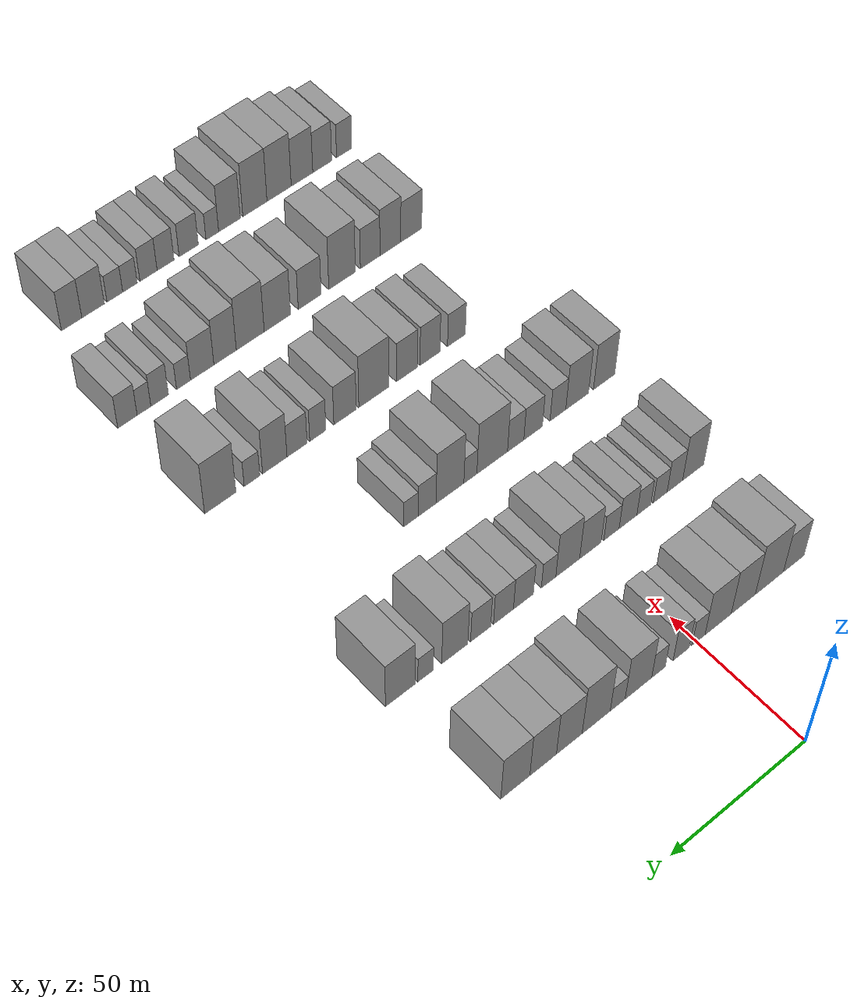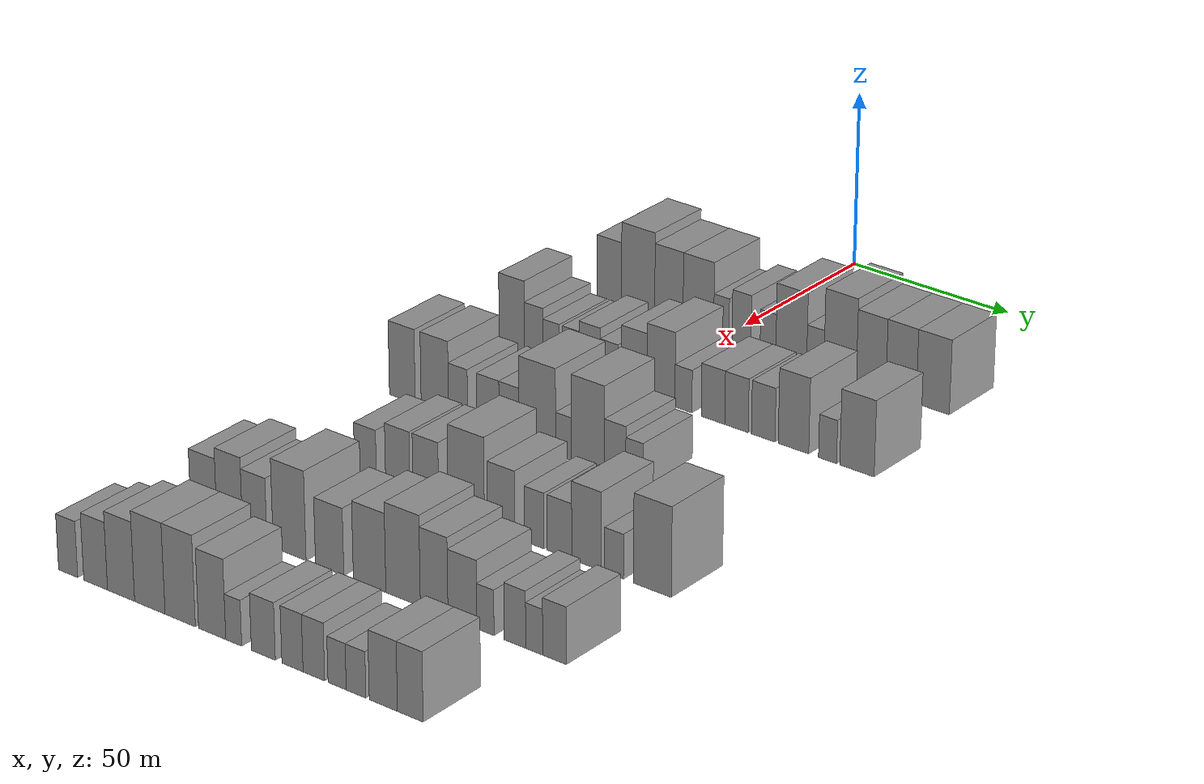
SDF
<sdf version="1.6">
 <world name="default">
  <model name="building_66">
   <static>1</static>
   <pose>50.0000 -38.0058 0 0.000000 0.000000 0.000000</pose>
   <link name="link">
    <pose>0 0 9.00 0 0 0</pose>
    <collision name="collision"><geometry><box><size>20.0000 8.2821 18.0000</size></box></geometry></collision>
    <visual name="visual">
     <cast_shadows>0</cast_shadows>
     <geometry><box><size>20.0000 8.2821 18.0000</size></box></geometry>
     <material>
      <script>
       <uri>model://grey_wall/materials/scripts</uri>
       <uri>model://grey_wall/materials/textures</uri>
       <name>vrc/grey_wall</name>
      </script>
     </material>
    </visual>
   </link>
  </model>
  <model name="building_67">
   <static>1</static>
   <pose>50.0000 -28.2612 0 0.000000 0.000000 0.000000</pose>
   <link name="link">
    <pose>0 0 12.00 0 0 0</pose>
    <collision name="collision"><geometry><box><size>20.0000 11.2072 24.0000</size></box></geometry></collision>
    <visual name="visual">
     <cast_shadows>0</cast_shadows>
     <geometry><box><size>20.0000 11.2072 24.0000</size></box></geometry>
     <material>
      <script>
       <uri>model://grey_wall/materials/scripts</uri>
       <uri>model://grey_wall/materials/textures</uri>
       <name>vrc/grey_wall</name>
      </script>
     </material>
    </visual>
   </link>
  </model>
  <model name="building_68">
   <static>1</static>
   <pose>50.0000 -17.9198 0 0.000000 0.000000 0.000000</pose>
   <link name="link">
    <pose>0 0 10.50 0 0 0</pose>
    <collision name="collision"><geometry><box><size>20.0000 9.4755 21.0000</size></box></geometry></collision>
    <visual name="visual">
     <cast_shadows>0</cast_shadows>
     <geometry><box><size>20.0000 9.4755 21.0000</size></box></geometry>
     <material>
      <script>
       <uri>model://grey_wall/materials/scripts</uri>
       <uri>model://grey_wall/materials/textures</uri>
       <name>vrc/grey_wall</name>
      </script>
     </material>
    </visual>
   </link>
  </model>
  <model name="building_69">
   <static>1</static>
   <pose>50.0000 -8.1011 0 0.000000 0.000000 0.000000</pose>
   <link name="link">
    <pose>0 0 10.50 0 0 0</pose>
    <collision name="collision"><geometry><box><size>20.0000 10.1619 21.0000</size></box></geometry></collision>
    <visual name="visual">
     <cast_shadows>0</cast_shadows>
     <geometry><box><size>20.0000 10.1619 21.0000</size></box></geometry>
     <material>
      <script>
       <uri>model://grey_wall/materials/scripts</uri>
       <uri>model://grey_wall/materials/textures</uri>
       <name>vrc/grey_wall</name>
      </script>
     </material>
    </visual>
   </link>
  </model>
  <model name="building_70">
   <static>1</static>
   <pose>50.0000 -0.4950 0 0.000000 0.000000 0.000000</pose>
   <link name="link">
    <pose>0 0 6.00 0 0 0</pose>
    <collision name="collision"><geometry><box><size>20.0000 5.0504 12.0000</size></box></geometry></collision>
    <visual name="visual">
     <cast_shadows>0</cast_shadows>
     <geometry><box><size>20.0000 5.0504 12.0000</size></box></geometry>
     <material>
      <script>
       <uri>model://grey_wall/materials/scripts</uri>
       <uri>model://grey_wall/materials/textures</uri>
       <name>vrc/grey_wall</name>
      </script>
     </material>
    </visual>
   </link>
  </model>
  <model name="building_71">
   <static>1</static>
   <pose>50.0000 6.1063 0 0.000000 0.000000 0.000000</pose>
   <link name="link">
    <pose>0 0 7.50 0 0 0</pose>
    <collision name="collision"><geometry><box><size>20.0000 6.1522 15.0000</size></box></geometry></collision>
    <visual name="visual">
     <cast_shadows>0</cast_shadows>
     <geometry><box><size>20.0000 6.1522 15.0000</size></box></geometry>
     <material>
      <script>
       <uri>model://grey_wall/materials/scripts</uri>
       <uri>model://grey_wall/materials/textures</uri>
       <name>vrc/grey_wall</name>
      </script>
     </material>
    </visual>
   </link>
  </model>
  <model name="building_72">
   <static>1</static>
   <pose>50.0000 14.7348 0 0.000000 0.000000 0.000000</pose>
   <link name="link">
    <pose>0 0 6.00 0 0 0</pose>
    <collision name="collision"><geometry><box><size>20.0000 5.1048 12.0000</size></box></geometry></collision>
    <visual name="visual">
     <cast_shadows>0</cast_shadows>
     <geometry><box><size>20.0000 5.1048 12.0000</size></box></geometry>
     <material>
      <script>
       <uri>model://grey_wall/materials/scripts</uri>
       <uri>model://grey_wall/materials/textures</uri>
       <name>vrc/grey_wall</name>
      </script>
     </material>
    </visual>
   </link>
  </model>
  <model name="building_73">
   <static>1</static>
   <pose>50.0000 22.2500 0 0.000000 0.000000 0.000000</pose>
   <link name="link">
    <pose>0 0 10.50 0 0 0</pose>
    <collision name="collision"><geometry><box><size>20.0000 9.9254 21.0000</size></box></geometry></collision>
    <visual name="visual">
     <cast_shadows>0</cast_shadows>
     <geometry><box><size>20.0000 9.9254 21.0000</size></box></geometry>
     <material>
      <script>
       <uri>model://grey_wall/materials/scripts</uri>
       <uri>model://grey_wall/materials/textures</uri>
       <name>vrc/grey_wall</name>
      </script>
     </material>
    </visual>
   </link>
  </model>
  <model name="building_74">
   <static>1</static>
   <pose>50.0000 29.9666 0 0.000000 0.000000 0.000000</pose>
   <link name="link">
    <pose>0 0 6.00 0 0 0</pose>
    <collision name="collision"><geometry><box><size>20.0000 5.5080 12.0000</size></box></geometry></collision>
    <visual name="visual">
     <cast_shadows>0</cast_shadows>
     <geometry><box><size>20.0000 5.5080 12.0000</size></box></geometry>
     <material>
      <script>
       <uri>model://grey_wall/materials/scripts</uri>
       <uri>model://grey_wall/materials/textures</uri>
       <name>vrc/grey_wall</name>
      </script>
     </material>
    </visual>
   </link>
  </model>
  <model name="building_75">
   <static>1</static>
   <pose>50.0000 37.8529 0 0.000000 0.000000 0.000000</pose>
   <link name="link">
    <pose>0 0 12.00 0 0 0</pose>
    <collision name="collision"><geometry><box><size>20.0000 10.2645 24.0000</size></box></geometry></collision>
    <visual name="visual">
     <cast_shadows>0</cast_shadows>
     <geometry><box><size>20.0000 10.2645 24.0000</size></box></geometry>
     <material>
      <script>
       <uri>model://grey_wall/materials/scripts</uri>
       <uri>model://grey_wall/materials/textures</uri>
       <name>vrc/grey_wall</name>
      </script>
     </material>
    </visual>
   </link>
  </model>
  <model name="building_76">
   <static>1</static>
   <pose>50.0000 47.6280 0 0.000000 0.000000 0.000000</pose>
   <link name="link">
    <pose>0 0 10.50 0 0 0</pose>
    <collision name="collision"><geometry><box><size>20.0000 9.2857 21.0000</size></box></geometry></collision>
    <visual name="visual">
     <cast_shadows>0</cast_shadows>
     <geometry><box><size>20.0000 9.2857 21.0000</size></box></geometry>
     <material>
      <script>
       <uri>model://grey_wall/materials/scripts</uri>
       <uri>model://grey_wall/materials/textures</uri>
       <name>vrc/grey_wall</name>
      </script>
     </material>
    </visual>
   </link>
  </model>
  <model name="building_77">
   <static>1</static>
   <pose>50.0000 57.0059 0 0.000000 0.000000 0.000000</pose>
   <link name="link">
    <pose>0 0 10.50 0 0 0</pose>
    <collision name="collision"><geometry><box><size>20.0000 9.4702 21.0000</size></box></geometry></collision>
    <visual name="visual">
     <cast_shadows>0</cast_shadows>
     <geometry><box><size>20.0000 9.4702 21.0000</size></box></geometry>
     <material>
      <script>
       <uri>model://grey_wall/materials/scripts</uri>
       <uri>model://grey_wall/materials/textures</uri>
       <name>vrc/grey_wall</name>
      </script>
     </material>
    </visual>
   </link>
  </model>
  <model name="building_78">
   <static>1</static>
   <pose>50.0000 66.8543 0 0.000000 0.000000 0.000000</pose>
   <link name="link">
    <pose>0 0 10.50 0 0 0</pose>
    <collision name="collision"><geometry><box><size>20.0000 10.2266 21.0000</size></box></geometry></collision>
    <visual name="visual">
     <cast_shadows>0</cast_shadows>
     <geometry><box><size>20.0000 10.2266 21.0000</size></box></geometry>
     <material>
      <script>
       <uri>model://grey_wall/materials/scripts</uri>
       <uri>model://grey_wall/materials/textures</uri>
       <name>vrc/grey_wall</name>
      </script>
     </material>
    </visual>
   </link>
  </model>
  <model name="building_207">
   <static>1</static>
   <pose>90.0000 -38.9517 0 0.000000 0.000000 0.000000</pose>
   <link name="link">
    <pose>0 0 10.50 0 0 0</pose>
    <collision name="collision"><geometry><box><size>20.0000 8.5309 21.0000</size></box></geometry></collision>
    <visual name="visual">
     <cast_shadows>0</cast_shadows>
     <geometry><box><size>20.0000 8.5309 21.0000</size></box></geometry>
     <material>
      <script>
       <uri>model://grey_wall/materials/scripts</uri>
       <uri>model://grey_wall/materials/textures</uri>
       <name>vrc/grey_wall</name>
      </script>
     </material>
    </visual>
   </link>
  </model>
  <model name="building_208">
   <static>1</static>
   <pose>90.0000 -31.5773 0 0.000000 0.000000 0.000000</pose>
   <link name="link">
    <pose>0 0 7.50 0 0 0</pose>
    <collision name="collision"><geometry><box><size>20.0000 6.2178 15.0000</size></box></geometry></collision>
    <visual name="visual">
     <cast_shadows>0</cast_shadows>
     <geometry><box><size>20.0000 6.2178 15.0000</size></box></geometry>
     <material>
      <script>
       <uri>model://grey_wall/materials/scripts</uri>
       <uri>model://grey_wall/materials/textures</uri>
       <name>vrc/grey_wall</name>
      </script>
     </material>
    </visual>
   </link>
  </model>
  <model name="building_209">
   <static>1</static>
   <pose>90.0000 -25.7071 0 0.000000 0.000000 0.000000</pose>
   <link name="link">
    <pose>0 0 6.00 0 0 0</pose>
    <collision name="collision"><geometry><box><size>20.0000 5.5227 12.0000</size></box></geometry></collision>
    <visual name="visual">
     <cast_shadows>0</cast_shadows>
     <geometry><box><size>20.0000 5.5227 12.0000</size></box></geometry>
     <material>
      <script>
       <uri>model://grey_wall/materials/scripts</uri>
       <uri>model://grey_wall/materials/textures</uri>
       <name>vrc/grey_wall</name>
      </script>
     </material>
    </visual>
   </link>
  </model>
  <model name="building_210">
   <static>1</static>
   <pose>90.0000 -19.2058 0 0.000000 0.000000 0.000000</pose>
   <link name="link">
    <pose>0 0 6.00 0 0 0</pose>
    <collision name="collision"><geometry><box><size>20.0000 5.4799 12.0000</size></box></geometry></collision>
    <visual name="visual">
     <cast_shadows>0</cast_shadows>
     <geometry><box><size>20.0000 5.4799 12.0000</size></box></geometry>
     <material>
      <script>
       <uri>model://grey_wall/materials/scripts</uri>
       <uri>model://grey_wall/materials/textures</uri>
       <name>vrc/grey_wall</name>
      </script>
     </material>
    </visual>
   </link>
  </model>
  <model name="building_211">
   <static>1</static>
   <pose>90.0000 -12.9869 0 0.000000 0.000000 0.000000</pose>
   <link name="link">
    <pose>0 0 7.50 0 0 0</pose>
    <collision name="collision"><geometry><box><size>20.0000 6.9579 15.0000</size></box></geometry></collision>
    <visual name="visual">
     <cast_shadows>0</cast_shadows>
     <geometry><box><size>20.0000 6.9579 15.0000</size></box></geometry>
     <material>
      <script>
       <uri>model://grey_wall/materials/scripts</uri>
       <uri>model://grey_wall/materials/textures</uri>
       <name>vrc/grey_wall</name>
      </script>
     </material>
    </visual>
   </link>
  </model>
  <model name="building_212">
   <static>1</static>
   <pose>90.0000 -6.5083 0 0.000000 0.000000 0.000000</pose>
   <link name="link">
    <pose>0 0 6.00 0 0 0</pose>
    <collision name="collision"><geometry><box><size>20.0000 5.9993 12.0000</size></box></geometry></collision>
    <visual name="visual">
     <cast_shadows>0</cast_shadows>
     <geometry><box><size>20.0000 5.9993 12.0000</size></box></geometry>
     <material>
      <script>
       <uri>model://grey_wall/materials/scripts</uri>
       <uri>model://grey_wall/materials/textures</uri>
       <name>vrc/grey_wall</name>
      </script>
     </material>
    </visual>
   </link>
  </model>
  <model name="building_213">
   <static>1</static>
   <pose>90.0000 1.6147 0 0.000000 0.000000 0.000000</pose>
   <link name="link">
    <pose>0 0 9.00 0 0 0</pose>
    <collision name="collision"><geometry><box><size>20.0000 8.2468 18.0000</size></box></geometry></collision>
    <visual name="visual">
     <cast_shadows>0</cast_shadows>
     <geometry><box><size>20.0000 8.2468 18.0000</size></box></geometry>
     <material>
      <script>
       <uri>model://grey_wall/materials/scripts</uri>
       <uri>model://grey_wall/materials/textures</uri>
       <name>vrc/grey_wall</name>
      </script>
     </material>
    </visual>
   </link>
  </model>
  <model name="building_214">
   <static>1</static>
   <pose>90.0000 10.2781 0 0.000000 0.000000 0.000000</pose>
   <link name="link">
    <pose>0 0 10.50 0 0 0</pose>
    <collision name="collision"><geometry><box><size>20.0000 9.0800 21.0000</size></box></geometry></collision>
    <visual name="visual">
     <cast_shadows>0</cast_shadows>
     <geometry><box><size>20.0000 9.0800 21.0000</size></box></geometry>
     <material>
      <script>
       <uri>model://grey_wall/materials/scripts</uri>
       <uri>model://grey_wall/materials/textures</uri>
       <name>vrc/grey_wall</name>
      </script>
     </material>
    </visual>
   </link>
  </model>
  <model name="building_215">
   <static>1</static>
   <pose>90.0000 17.5493 0 0.000000 0.000000 0.000000</pose>
   <link name="link">
    <pose>0 0 6.00 0 0 0</pose>
    <collision name="collision"><geometry><box><size>20.0000 5.4625 12.0000</size></box></geometry></collision>
    <visual name="visual">
     <cast_shadows>0</cast_shadows>
     <geometry><box><size>20.0000 5.4625 12.0000</size></box></geometry>
     <material>
      <script>
       <uri>model://grey_wall/materials/scripts</uri>
       <uri>model://grey_wall/materials/textures</uri>
       <name>vrc/grey_wall</name>
      </script>
     </material>
    </visual>
   </link>
  </model>
  <model name="building_216">
   <static>1</static>
   <pose>90.0000 26.9923 0 0.000000 0.000000 0.000000</pose>
   <link name="link">
    <pose>0 0 7.50 0 0 0</pose>
    <collision name="collision"><geometry><box><size>20.0000 7.4236 15.0000</size></box></geometry></collision>
    <visual name="visual">
     <cast_shadows>0</cast_shadows>
     <geometry><box><size>20.0000 7.4236 15.0000</size></box></geometry>
     <material>
      <script>
       <uri>model://grey_wall/materials/scripts</uri>
       <uri>model://grey_wall/materials/textures</uri>
       <name>vrc/grey_wall</name>
      </script>
     </material>
    </visual>
   </link>
  </model>
  <model name="building_217">
   <static>1</static>
   <pose>90.0000 34.4051 0 0.000000 0.000000 0.000000</pose>
   <link name="link">
    <pose>0 0 7.50 0 0 0</pose>
    <collision name="collision"><geometry><box><size>20.0000 7.4021 15.0000</size></box></geometry></collision>
    <visual name="visual">
     <cast_shadows>0</cast_shadows>
     <geometry><box><size>20.0000 7.4021 15.0000</size></box></geometry>
     <material>
      <script>
       <uri>model://grey_wall/materials/scripts</uri>
       <uri>model://grey_wall/materials/textures</uri>
       <name>vrc/grey_wall</name>
      </script>
     </material>
    </visual>
   </link>
  </model>
  <model name="building_218">
   <static>1</static>
   <pose>90.0000 42.7882 0 0.000000 0.000000 0.000000</pose>
   <link name="link">
    <pose>0 0 7.50 0 0 0</pose>
    <collision name="collision"><geometry><box><size>20.0000 7.3640 15.0000</size></box></geometry></collision>
    <visual name="visual">
     <cast_shadows>0</cast_shadows>
     <geometry><box><size>20.0000 7.3640 15.0000</size></box></geometry>
     <material>
      <script>
       <uri>model://grey_wall/materials/scripts</uri>
       <uri>model://grey_wall/materials/textures</uri>
       <name>vrc/grey_wall</name>
      </script>
     </material>
    </visual>
   </link>
  </model>
  <model name="building_219">
   <static>1</static>
   <pose>90.0000 52.2006 0 0.000000 0.000000 0.000000</pose>
   <link name="link">
    <pose>0 0 10.50 0 0 0</pose>
    <collision name="collision"><geometry><box><size>20.0000 9.4609 21.0000</size></box></geometry></collision>
    <visual name="visual">
     <cast_shadows>0</cast_shadows>
     <geometry><box><size>20.0000 9.4609 21.0000</size></box></geometry>
     <material>
      <script>
       <uri>model://grey_wall/materials/scripts</uri>
       <uri>model://grey_wall/materials/textures</uri>
       <name>vrc/grey_wall</name>
      </script>
     </material>
    </visual>
   </link>
  </model>
  <model name="building_220">
   <static>1</static>
   <pose>90.0000 62.6886 0 0.000000 0.000000 0.000000</pose>
   <link name="link">
    <pose>0 0 6.00 0 0 0</pose>
    <collision name="collision"><geometry><box><size>20.0000 5.5152 12.0000</size></box></geometry></collision>
    <visual name="visual">
     <cast_shadows>0</cast_shadows>
     <geometry><box><size>20.0000 5.5152 12.0000</size></box></geometry>
     <material>
      <script>
       <uri>model://grey_wall/materials/scripts</uri>
       <uri>model://grey_wall/materials/textures</uri>
       <name>vrc/grey_wall</name>
      </script>
     </material>
    </visual>
   </link>
  </model>
  <model name="building_221">
   <static>1</static>
   <pose>90.0000 71.6582 0 0.000000 0.000000 0.000000</pose>
   <link name="link">
    <pose>0 0 10.50 0 0 0</pose>
    <collision name="collision"><geometry><box><size>20.0000 10.4239 21.0000</size></box></geometry></collision>
    <visual name="visual">
     <cast_shadows>0</cast_shadows>
     <geometry><box><size>20.0000 10.4239 21.0000</size></box></geometry>
     <material>
      <script>
       <uri>model://grey_wall/materials/scripts</uri>
       <uri>model://grey_wall/materials/textures</uri>
       <name>vrc/grey_wall</name>
      </script>
     </material>
    </visual>
   </link>
  </model>
  <model name="building_348">
   <static>1</static>
   <pose>130.0000 -42.2917 0 0.000000 0.000000 0.000000</pose>
   <link name="link">
    <pose>0 0 10.50 0 0 0</pose>
    <collision name="collision"><geometry><box><size>20.0000 8.6588 21.0000</size></box></geometry></collision>
    <visual name="visual">
     <cast_shadows>0</cast_shadows>
     <geometry><box><size>20.0000 8.6588 21.0000</size></box></geometry>
     <material>
      <script>
       <uri>model://grey_wall/materials/scripts</uri>
       <uri>model://grey_wall/materials/textures</uri>
       <name>vrc/grey_wall</name>
      </script>
     </material>
    </visual>
   </link>
  </model>
  <model name="building_349">
   <static>1</static>
   <pose>130.0000 -31.3936 0 0.000000 0.000000 0.000000</pose>
   <link name="link">
    <pose>0 0 10.50 0 0 0</pose>
    <collision name="collision"><geometry><box><size>20.0000 9.1375 21.0000</size></box></geometry></collision>
    <visual name="visual">
     <cast_shadows>0</cast_shadows>
     <geometry><box><size>20.0000 9.1375 21.0000</size></box></geometry>
     <material>
      <script>
       <uri>model://grey_wall/materials/scripts</uri>
       <uri>model://grey_wall/materials/textures</uri>
       <name>vrc/grey_wall</name>
      </script>
     </material>
    </visual>
   </link>
  </model>
  <model name="building_350">
   <static>1</static>
   <pose>130.0000 -23.6663 0 0.000000 0.000000 0.000000</pose>
   <link name="link">
    <pose>0 0 7.50 0 0 0</pose>
    <collision name="collision"><geometry><box><size>20.0000 6.3170 15.0000</size></box></geometry></collision>
    <visual name="visual">
     <cast_shadows>0</cast_shadows>
     <geometry><box><size>20.0000 6.3170 15.0000</size></box></geometry>
     <material>
      <script>
       <uri>model://grey_wall/materials/scripts</uri>
       <uri>model://grey_wall/materials/textures</uri>
       <name>vrc/grey_wall</name>
      </script>
     </material>
    </visual>
   </link>
  </model>
  <model name="building_351">
   <static>1</static>
   <pose>130.0000 -13.8489 0 0.000000 0.000000 0.000000</pose>
   <link name="link">
    <pose>0 0 7.50 0 0 0</pose>
    <collision name="collision"><geometry><box><size>20.0000 7.3179 15.0000</size></box></geometry></collision>
    <visual name="visual">
     <cast_shadows>0</cast_shadows>
     <geometry><box><size>20.0000 7.3179 15.0000</size></box></geometry>
     <material>
      <script>
       <uri>model://grey_wall/materials/scripts</uri>
       <uri>model://grey_wall/materials/textures</uri>
       <name>vrc/grey_wall</name>
      </script>
     </material>
    </visual>
   </link>
  </model>
  <model name="building_352">
   <static>1</static>
   <pose>130.0000 -6.9910 0 0.000000 0.000000 0.000000</pose>
   <link name="link">
    <pose>0 0 7.50 0 0 0</pose>
    <collision name="collision"><geometry><box><size>20.0000 6.3978 15.0000</size></box></geometry></collision>
    <visual name="visual">
     <cast_shadows>0</cast_shadows>
     <geometry><box><size>20.0000 6.3978 15.0000</size></box></geometry>
     <material>
      <script>
       <uri>model://grey_wall/materials/scripts</uri>
       <uri>model://grey_wall/materials/textures</uri>
       <name>vrc/grey_wall</name>
      </script>
     </material>
    </visual>
   </link>
  </model>
  <model name="building_353">
   <static>1</static>
   <pose>130.0000 2.1304 0 0.000000 0.000000 0.000000</pose>
   <link name="link">
    <pose>0 0 12.00 0 0 0</pose>
    <collision name="collision"><geometry><box><size>20.0000 11.8450 24.0000</size></box></geometry></collision>
    <visual name="visual">
     <cast_shadows>0</cast_shadows>
     <geometry><box><size>20.0000 11.8450 24.0000</size></box></geometry>
     <material>
      <script>
       <uri>model://grey_wall/materials/scripts</uri>
       <uri>model://grey_wall/materials/textures</uri>
       <name>vrc/grey_wall</name>
      </script>
     </material>
    </visual>
   </link>
  </model>
  <model name="building_354">
   <static>1</static>
   <pose>130.0000 10.5451 0 0.000000 0.000000 0.000000</pose>
   <link name="link">
    <pose>0 0 6.00 0 0 0</pose>
    <collision name="collision"><geometry><box><size>20.0000 4.9845 12.0000</size></box></geometry></collision>
    <visual name="visual">
     <cast_shadows>0</cast_shadows>
     <geometry><box><size>20.0000 4.9845 12.0000</size></box></geometry>
     <material>
      <script>
       <uri>model://grey_wall/materials/scripts</uri>
       <uri>model://grey_wall/materials/textures</uri>
       <name>vrc/grey_wall</name>
      </script>
     </material>
    </visual>
   </link>
  </model>
  <model name="building_355">
   <static>1</static>
   <pose>130.0000 18.3185 0 0.000000 0.000000 0.000000</pose>
   <link name="link">
    <pose>0 0 12.00 0 0 0</pose>
    <collision name="collision"><geometry><box><size>20.0000 10.5623 24.0000</size></box></geometry></collision>
    <visual name="visual">
     <cast_shadows>0</cast_shadows>
     <geometry><box><size>20.0000 10.5623 24.0000</size></box></geometry>
     <material>
      <script>
       <uri>model://grey_wall/materials/scripts</uri>
       <uri>model://grey_wall/materials/textures</uri>
       <name>vrc/grey_wall</name>
      </script>
     </material>
    </visual>
   </link>
  </model>
  <model name="building_356">
   <static>1</static>
   <pose>130.0000 26.9255 0 0.000000 0.000000 0.000000</pose>
   <link name="link">
    <pose>0 0 7.50 0 0 0</pose>
    <collision name="collision"><geometry><box><size>20.0000 6.6515 15.0000</size></box></geometry></collision>
    <visual name="visual">
     <cast_shadows>0</cast_shadows>
     <geometry><box><size>20.0000 6.6515 15.0000</size></box></geometry>
     <material>
      <script>
       <uri>model://grey_wall/materials/scripts</uri>
       <uri>model://grey_wall/materials/textures</uri>
       <name>vrc/grey_wall</name>
      </script>
     </material>
    </visual>
   </link>
  </model>
  <model name="building_357">
   <static>1</static>
   <pose>130.0000 32.9451 0 0.000000 0.000000 0.000000</pose>
   <link name="link">
    <pose>0 0 6.00 0 0 0</pose>
    <collision name="collision"><geometry><box><size>20.0000 5.3878 12.0000</size></box></geometry></collision>
    <visual name="visual">
     <cast_shadows>0</cast_shadows>
     <geometry><box><size>20.0000 5.3878 12.0000</size></box></geometry>
     <material>
      <script>
       <uri>model://grey_wall/materials/scripts</uri>
       <uri>model://grey_wall/materials/textures</uri>
       <name>vrc/grey_wall</name>
      </script>
     </material>
    </visual>
   </link>
  </model>
  <model name="building_482">
   <static>1</static>
   <pose>170.0000 -19.8377 0 0.000000 0.000000 0.000000</pose>
   <link name="link">
    <pose>0 0 7.50 0 0 0</pose>
    <collision name="collision"><geometry><box><size>20.0000 7.1137 15.0000</size></box></geometry></collision>
    <visual name="visual">
     <cast_shadows>0</cast_shadows>
     <geometry><box><size>20.0000 7.1137 15.0000</size></box></geometry>
     <material>
      <script>
       <uri>model://grey_wall/materials/scripts</uri>
       <uri>model://grey_wall/materials/textures</uri>
       <name>vrc/grey_wall</name>
      </script>
     </material>
    </visual>
   </link>
  </model>
  <model name="building_483">
   <static>1</static>
   <pose>170.0000 -9.3488 0 0.000000 0.000000 0.000000</pose>
   <link name="link">
    <pose>0 0 9.00 0 0 0</pose>
    <collision name="collision"><geometry><box><size>20.0000 7.8642 18.0000</size></box></geometry></collision>
    <visual name="visual">
     <cast_shadows>0</cast_shadows>
     <geometry><box><size>20.0000 7.8642 18.0000</size></box></geometry>
     <material>
      <script>
       <uri>model://grey_wall/materials/scripts</uri>
       <uri>model://grey_wall/materials/textures</uri>
       <name>vrc/grey_wall</name>
      </script>
     </material>
    </visual>
   </link>
  </model>
  <model name="building_484">
   <static>1</static>
   <pose>170.0000 -0.3206 0 0.000000 0.000000 0.000000</pose>
   <link name="link">
    <pose>0 0 9.00 0 0 0</pose>
    <collision name="collision"><geometry><box><size>20.0000 8.1921 18.0000</size></box></geometry></collision>
    <visual name="visual">
     <cast_shadows>0</cast_shadows>
     <geometry><box><size>20.0000 8.1921 18.0000</size></box></geometry>
     <material>
      <script>
       <uri>model://grey_wall/materials/scripts</uri>
       <uri>model://grey_wall/materials/textures</uri>
       <name>vrc/grey_wall</name>
      </script>
     </material>
    </visual>
   </link>
  </model>
  <model name="building_485">
   <static>1</static>
   <pose>170.0000 12.5129 0 0.000000 0.000000 0.000000</pose>
   <link name="link">
    <pose>0 0 12.00 0 0 0</pose>
    <collision name="collision"><geometry><box><size>20.0000 11.4749 24.0000</size></box></geometry></collision>
    <visual name="visual">
     <cast_shadows>0</cast_shadows>
     <geometry><box><size>20.0000 11.4749 24.0000</size></box></geometry>
     <material>
      <script>
       <uri>model://grey_wall/materials/scripts</uri>
       <uri>model://grey_wall/materials/textures</uri>
       <name>vrc/grey_wall</name>
      </script>
     </material>
    </visual>
   </link>
  </model>
  <model name="building_486">
   <static>1</static>
   <pose>170.0000 23.4883 0 0.000000 0.000000 0.000000</pose>
   <link name="link">
    <pose>0 0 9.00 0 0 0</pose>
    <collision name="collision"><geometry><box><size>20.0000 8.4759 18.0000</size></box></geometry></collision>
    <visual name="visual">
     <cast_shadows>0</cast_shadows>
     <geometry><box><size>20.0000 8.4759 18.0000</size></box></geometry>
     <material>
      <script>
       <uri>model://grey_wall/materials/scripts</uri>
       <uri>model://grey_wall/materials/textures</uri>
       <name>vrc/grey_wall</name>
      </script>
     </material>
    </visual>
   </link>
  </model>
  <model name="building_487">
   <static>1</static>
   <pose>170.0000 33.7559 0 0.000000 0.000000 0.000000</pose>
   <link name="link">
    <pose>0 0 7.50 0 0 0</pose>
    <collision name="collision"><geometry><box><size>20.0000 6.0593 15.0000</size></box></geometry></collision>
    <visual name="visual">
     <cast_shadows>0</cast_shadows>
     <geometry><box><size>20.0000 6.0593 15.0000</size></box></geometry>
     <material>
      <script>
       <uri>model://grey_wall/materials/scripts</uri>
       <uri>model://grey_wall/materials/textures</uri>
       <name>vrc/grey_wall</name>
      </script>
     </material>
    </visual>
   </link>
  </model>
  <model name="building_488">
   <static>1</static>
   <pose>170.0000 41.5181 0 0.000000 0.000000 0.000000</pose>
   <link name="link">
    <pose>0 0 7.50 0 0 0</pose>
    <collision name="collision"><geometry><box><size>20.0000 7.4650 15.0000</size></box></geometry></collision>
    <visual name="visual">
     <cast_shadows>0</cast_shadows>
     <geometry><box><size>20.0000 7.4650 15.0000</size></box></geometry>
     <material>
      <script>
       <uri>model://grey_wall/materials/scripts</uri>
       <uri>model://grey_wall/materials/textures</uri>
       <name>vrc/grey_wall</name>
      </script>
     </material>
    </visual>
   </link>
  </model>
  <model name="building_489">
   <static>1</static>
   <pose>170.0000 49.7402 0 0.000000 0.000000 0.000000</pose>
   <link name="link">
    <pose>0 0 10.50 0 0 0</pose>
    <collision name="collision"><geometry><box><size>20.0000 8.9791 21.0000</size></box></geometry></collision>
    <visual name="visual">
     <cast_shadows>0</cast_shadows>
     <geometry><box><size>20.0000 8.9791 21.0000</size></box></geometry>
     <material>
      <script>
       <uri>model://grey_wall/materials/scripts</uri>
       <uri>model://grey_wall/materials/textures</uri>
       <name>vrc/grey_wall</name>
      </script>
     </material>
    </visual>
   </link>
  </model>
  <model name="building_490">
   <static>1</static>
   <pose>170.0000 58.0812 0 0.000000 0.000000 0.000000</pose>
   <link name="link">
    <pose>0 0 6.00 0 0 0</pose>
    <collision name="collision"><geometry><box><size>20.0000 5.7029 12.0000</size></box></geometry></collision>
    <visual name="visual">
     <cast_shadows>0</cast_shadows>
     <geometry><box><size>20.0000 5.7029 12.0000</size></box></geometry>
     <material>
      <script>
       <uri>model://grey_wall/materials/scripts</uri>
       <uri>model://grey_wall/materials/textures</uri>
       <name>vrc/grey_wall</name>
      </script>
     </material>
    </visual>
   </link>
  </model>
  <model name="building_491">
   <static>1</static>
   <pose>170.0000 69.5574 0 0.000000 0.000000 0.000000</pose>
   <link name="link">
    <pose>0 0 12.00 0 0 0</pose>
    <collision name="collision"><geometry><box><size>20.0000 11.2495 24.0000</size></box></geometry></collision>
    <visual name="visual">
     <cast_shadows>0</cast_shadows>
     <geometry><box><size>20.0000 11.2495 24.0000</size></box></geometry>
     <material>
      <script>
       <uri>model://grey_wall/materials/scripts</uri>
       <uri>model://grey_wall/materials/textures</uri>
       <name>vrc/grey_wall</name>
      </script>
     </material>
    </visual>
   </link>
  </model>
  <model name="building_617">
   <static>1</static>
   <pose>210.0000 -36.8878 0 0.000000 0.000000 0.000000</pose>
   <link name="link">
    <pose>0 0 9.00 0 0 0</pose>
    <collision name="collision"><geometry><box><size>20.0000 8.5770 18.0000</size></box></geometry></collision>
    <visual name="visual">
     <cast_shadows>0</cast_shadows>
     <geometry><box><size>20.0000 8.5770 18.0000</size></box></geometry>
     <material>
      <script>
       <uri>model://grey_wall/materials/scripts</uri>
       <uri>model://grey_wall/materials/textures</uri>
       <name>vrc/grey_wall</name>
      </script>
     </material>
    </visual>
   </link>
  </model>
  <model name="building_618">
   <static>1</static>
   <pose>210.0000 -28.3944 0 0.000000 0.000000 0.000000</pose>
   <link name="link">
    <pose>0 0 10.50 0 0 0</pose>
    <collision name="collision"><geometry><box><size>20.0000 8.4099 21.0000</size></box></geometry></collision>
    <visual name="visual">
     <cast_shadows>0</cast_shadows>
     <geometry><box><size>20.0000 8.4099 21.0000</size></box></geometry>
     <material>
      <script>
       <uri>model://grey_wall/materials/scripts</uri>
       <uri>model://grey_wall/materials/textures</uri>
       <name>vrc/grey_wall</name>
      </script>
     </material>
    </visual>
   </link>
  </model>
  <model name="building_619">
   <static>1</static>
   <pose>210.0000 -20.2342 0 0.000000 0.000000 0.000000</pose>
   <link name="link">
    <pose>0 0 9.00 0 0 0</pose>
    <collision name="collision"><geometry><box><size>20.0000 7.9104 18.0000</size></box></geometry></collision>
    <visual name="visual">
     <cast_shadows>0</cast_shadows>
     <geometry><box><size>20.0000 7.9104 18.0000</size></box></geometry>
     <material>
      <script>
       <uri>model://grey_wall/materials/scripts</uri>
       <uri>model://grey_wall/materials/textures</uri>
       <name>vrc/grey_wall</name>
      </script>
     </material>
    </visual>
   </link>
  </model>
  <model name="building_620">
   <static>1</static>
   <pose>210.0000 -9.0103 0 0.000000 0.000000 0.000000</pose>
   <link name="link">
    <pose>0 0 12.00 0 0 0</pose>
    <collision name="collision"><geometry><box><size>20.0000 10.5374 24.0000</size></box></geometry></collision>
    <visual name="visual">
     <cast_shadows>0</cast_shadows>
     <geometry><box><size>20.0000 10.5374 24.0000</size></box></geometry>
     <material>
      <script>
       <uri>model://grey_wall/materials/scripts</uri>
       <uri>model://grey_wall/materials/textures</uri>
       <name>vrc/grey_wall</name>
      </script>
     </material>
    </visual>
   </link>
  </model>
  <model name="building_621">
   <static>1</static>
   <pose>210.0000 3.7434 0 0.000000 0.000000 0.000000</pose>
   <link name="link">
    <pose>0 0 9.00 0 0 0</pose>
    <collision name="collision"><geometry><box><size>20.0000 8.9698 18.0000</size></box></geometry></collision>
    <visual name="visual">
     <cast_shadows>0</cast_shadows>
     <geometry><box><size>20.0000 8.9698 18.0000</size></box></geometry>
     <material>
      <script>
       <uri>model://grey_wall/materials/scripts</uri>
       <uri>model://grey_wall/materials/textures</uri>
       <name>vrc/grey_wall</name>
      </script>
     </material>
    </visual>
   </link>
  </model>
  <model name="building_622">
   <static>1</static>
   <pose>210.0000 16.3036 0 0.000000 0.000000 0.000000</pose>
   <link name="link">
    <pose>0 0 10.50 0 0 0</pose>
    <collision name="collision"><geometry><box><size>20.0000 10.1507 21.0000</size></box></geometry></collision>
    <visual name="visual">
     <cast_shadows>0</cast_shadows>
     <geometry><box><size>20.0000 10.1507 21.0000</size></box></geometry>
     <material>
      <script>
       <uri>model://grey_wall/materials/scripts</uri>
       <uri>model://grey_wall/materials/textures</uri>
       <name>vrc/grey_wall</name>
      </script>
     </material>
    </visual>
   </link>
  </model>
  <model name="building_623">
   <static>1</static>
   <pose>210.0000 26.7003 0 0.000000 0.000000 0.000000</pose>
   <link name="link">
    <pose>0 0 12.00 0 0 0</pose>
    <collision name="collision"><geometry><box><size>20.0000 10.6427 24.0000</size></box></geometry></collision>
    <visual name="visual">
     <cast_shadows>0</cast_shadows>
     <geometry><box><size>20.0000 10.6427 24.0000</size></box></geometry>
     <material>
      <script>
       <uri>model://grey_wall/materials/scripts</uri>
       <uri>model://grey_wall/materials/textures</uri>
       <name>vrc/grey_wall</name>
      </script>
     </material>
    </visual>
   </link>
  </model>
  <model name="building_624">
   <static>1</static>
   <pose>210.0000 36.2423 0 0.000000 0.000000 0.000000</pose>
   <link name="link">
    <pose>0 0 10.50 0 0 0</pose>
    <collision name="collision"><geometry><box><size>20.0000 8.4412 21.0000</size></box></geometry></collision>
    <visual name="visual">
     <cast_shadows>0</cast_shadows>
     <geometry><box><size>20.0000 8.4412 21.0000</size></box></geometry>
     <material>
      <script>
       <uri>model://grey_wall/materials/scripts</uri>
       <uri>model://grey_wall/materials/textures</uri>
       <name>vrc/grey_wall</name>
      </script>
     </material>
    </visual>
   </link>
  </model>
  <model name="building_625">
   <static>1</static>
   <pose>210.0000 44.8315 0 0.000000 0.000000 0.000000</pose>
   <link name="link">
    <pose>0 0 9.00 0 0 0</pose>
    <collision name="collision"><geometry><box><size>20.0000 8.7373 18.0000</size></box></geometry></collision>
    <visual name="visual">
     <cast_shadows>0</cast_shadows>
     <geometry><box><size>20.0000 8.7373 18.0000</size></box></geometry>
     <material>
      <script>
       <uri>model://grey_wall/materials/scripts</uri>
       <uri>model://grey_wall/materials/textures</uri>
       <name>vrc/grey_wall</name>
      </script>
     </material>
    </visual>
   </link>
  </model>
  <model name="building_626">
   <static>1</static>
   <pose>210.0000 51.7820 0 0.000000 0.000000 0.000000</pose>
   <link name="link">
    <pose>0 0 6.00 0 0 0</pose>
    <collision name="collision"><geometry><box><size>20.0000 5.1637 12.0000</size></box></geometry></collision>
    <visual name="visual">
     <cast_shadows>0</cast_shadows>
     <geometry><box><size>20.0000 5.1637 12.0000</size></box></geometry>
     <material>
      <script>
       <uri>model://grey_wall/materials/scripts</uri>
       <uri>model://grey_wall/materials/textures</uri>
       <name>vrc/grey_wall</name>
      </script>
     </material>
    </visual>
   </link>
  </model>
  <model name="building_627">
   <static>1</static>
   <pose>210.0000 60.5786 0 0.000000 0.000000 0.000000</pose>
   <link name="link">
    <pose>0 0 7.50 0 0 0</pose>
    <collision name="collision"><geometry><box><size>20.0000 6.4294 15.0000</size></box></geometry></collision>
    <visual name="visual">
     <cast_shadows>0</cast_shadows>
     <geometry><box><size>20.0000 6.4294 15.0000</size></box></geometry>
     <material>
      <script>
       <uri>model://grey_wall/materials/scripts</uri>
       <uri>model://grey_wall/materials/textures</uri>
       <name>vrc/grey_wall</name>
      </script>
     </material>
    </visual>
   </link>
  </model>
  <model name="building_628">
   <static>1</static>
   <pose>210.0000 66.2946 0 0.000000 0.000000 0.000000</pose>
   <link name="link">
    <pose>0 0 6.00 0 0 0</pose>
    <collision name="collision"><geometry><box><size>20.0000 5.0028 12.0000</size></box></geometry></collision>
    <visual name="visual">
     <cast_shadows>0</cast_shadows>
     <geometry><box><size>20.0000 5.0028 12.0000</size></box></geometry>
     <material>
      <script>
       <uri>model://grey_wall/materials/scripts</uri>
       <uri>model://grey_wall/materials/textures</uri>
       <name>vrc/grey_wall</name>
      </script>
     </material>
    </visual>
   </link>
  </model>
  <model name="building_629">
   <static>1</static>
   <pose>210.0000 72.2993 0 0.000000 0.000000 0.000000</pose>
   <link name="link">
    <pose>0 0 7.50 0 0 0</pose>
    <collision name="collision"><geometry><box><size>20.0000 7.0065 15.0000</size></box></geometry></collision>
    <visual name="visual">
     <cast_shadows>0</cast_shadows>
     <geometry><box><size>20.0000 7.0065 15.0000</size></box></geometry>
     <material>
      <script>
       <uri>model://grey_wall/materials/scripts</uri>
       <uri>model://grey_wall/materials/textures</uri>
       <name>vrc/grey_wall</name>
      </script>
     </material>
    </visual>
   </link>
  </model>
  <model name="building_744">
   <static>1</static>
   <pose>250.0000 -43.4494 0 0.000000 0.000000 0.000000</pose>
   <link name="link">
    <pose>0 0 7.50 0 0 0</pose>
    <collision name="collision"><geometry><box><size>20.0000 6.2987 15.0000</size></box></geometry></collision>
    <visual name="visual">
     <cast_shadows>0</cast_shadows>
     <geometry><box><size>20.0000 6.2987 15.0000</size></box></geometry>
     <material>
      <script>
       <uri>model://grey_wall/materials/scripts</uri>
       <uri>model://grey_wall/materials/textures</uri>
       <name>vrc/grey_wall</name>
      </script>
     </material>
    </visual>
   </link>
  </model>
  <model name="building_745">
   <static>1</static>
   <pose>250.0000 -34.4172 0 0.000000 0.000000 0.000000</pose>
   <link name="link">
    <pose>0 0 9.00 0 0 0</pose>
    <collision name="collision"><geometry><box><size>20.0000 7.7657 18.0000</size></box></geometry></collision>
    <visual name="visual">
     <cast_shadows>0</cast_shadows>
     <geometry><box><size>20.0000 7.7657 18.0000</size></box></geometry>
     <material>
      <script>
       <uri>model://grey_wall/materials/scripts</uri>
       <uri>model://grey_wall/materials/textures</uri>
       <name>vrc/grey_wall</name>
      </script>
     </material>
    </visual>
   </link>
  </model>
  <model name="building_746">
   <static>1</static>
   <pose>250.0000 -26.1371 0 0.000000 0.000000 0.000000</pose>
   <link name="link">
    <pose>0 0 10.50 0 0 0</pose>
    <collision name="collision"><geometry><box><size>20.0000 8.7946 21.0000</size></box></geometry></collision>
    <visual name="visual">
     <cast_shadows>0</cast_shadows>
     <geometry><box><size>20.0000 8.7946 21.0000</size></box></geometry>
     <material>
      <script>
       <uri>model://grey_wall/materials/scripts</uri>
       <uri>model://grey_wall/materials/textures</uri>
       <name>vrc/grey_wall</name>
      </script>
     </material>
    </visual>
   </link>
  </model>
  <model name="building_747">
   <static>1</static>
   <pose>250.0000 -16.8513 0 0.000000 0.000000 0.000000</pose>
   <link name="link">
    <pose>0 0 12.00 0 0 0</pose>
    <collision name="collision"><geometry><box><size>20.0000 9.7769 24.0000</size></box></geometry></collision>
    <visual name="visual">
     <cast_shadows>0</cast_shadows>
     <geometry><box><size>20.0000 9.7769 24.0000</size></box></geometry>
     <material>
      <script>
       <uri>model://grey_wall/materials/scripts</uri>
       <uri>model://grey_wall/materials/textures</uri>
       <name>vrc/grey_wall</name>
      </script>
     </material>
    </visual>
   </link>
  </model>
  <model name="building_748">
   <static>1</static>
   <pose>250.0000 -7.1417 0 0.000000 0.000000 0.000000</pose>
   <link name="link">
    <pose>0 0 12.00 0 0 0</pose>
    <collision name="collision"><geometry><box><size>20.0000 9.6425 24.0000</size></box></geometry></collision>
    <visual name="visual">
     <cast_shadows>0</cast_shadows>
     <geometry><box><size>20.0000 9.6425 24.0000</size></box></geometry>
     <material>
      <script>
       <uri>model://grey_wall/materials/scripts</uri>
       <uri>model://grey_wall/materials/textures</uri>
       <name>vrc/grey_wall</name>
      </script>
     </material>
    </visual>
   </link>
  </model>
  <model name="building_749">
   <static>1</static>
   <pose>250.0000 2.9569 0 0.000000 0.000000 0.000000</pose>
   <link name="link">
    <pose>0 0 10.50 0 0 0</pose>
    <collision name="collision"><geometry><box><size>20.0000 8.5545 21.0000</size></box></geometry></collision>
    <visual name="visual">
     <cast_shadows>0</cast_shadows>
     <geometry><box><size>20.0000 8.5545 21.0000</size></box></geometry>
     <material>
      <script>
       <uri>model://grey_wall/materials/scripts</uri>
       <uri>model://grey_wall/materials/textures</uri>
       <name>vrc/grey_wall</name>
      </script>
     </material>
    </visual>
   </link>
  </model>
  <model name="building_750">
   <static>1</static>
   <pose>250.0000 9.7204 0 0.000000 0.000000 0.000000</pose>
   <link name="link">
    <pose>0 0 6.00 0 0 0</pose>
    <collision name="collision"><geometry><box><size>20.0000 4.9725 12.0000</size></box></geometry></collision>
    <visual name="visual">
     <cast_shadows>0</cast_shadows>
     <geometry><box><size>20.0000 4.9725 12.0000</size></box></geometry>
     <material>
      <script>
       <uri>model://grey_wall/materials/scripts</uri>
       <uri>model://grey_wall/materials/textures</uri>
       <name>vrc/grey_wall</name>
      </script>
     </material>
    </visual>
   </link>
  </model>
  <model name="building_751">
   <static>1</static>
   <pose>250.0000 18.9138 0 0.000000 0.000000 0.000000</pose>
   <link name="link">
    <pose>0 0 7.50 0 0 0</pose>
    <collision name="collision"><geometry><box><size>20.0000 7.4143 15.0000</size></box></geometry></collision>
    <visual name="visual">
     <cast_shadows>0</cast_shadows>
     <geometry><box><size>20.0000 7.4143 15.0000</size></box></geometry>
     <material>
      <script>
       <uri>model://grey_wall/materials/scripts</uri>
       <uri>model://grey_wall/materials/textures</uri>
       <name>vrc/grey_wall</name>
      </script>
     </material>
    </visual>
   </link>
  </model>
  <model name="building_752">
   <static>1</static>
   <pose>250.0000 27.8621 0 0.000000 0.000000 0.000000</pose>
   <link name="link">
    <pose>0 0 7.50 0 0 0</pose>
    <collision name="collision"><geometry><box><size>20.0000 6.4822 15.0000</size></box></geometry></collision>
    <visual name="visual">
     <cast_shadows>0</cast_shadows>
     <geometry><box><size>20.0000 6.4822 15.0000</size></box></geometry>
     <material>
      <script>
       <uri>model://grey_wall/materials/scripts</uri>
       <uri>model://grey_wall/materials/textures</uri>
       <name>vrc/grey_wall</name>
      </script>
     </material>
    </visual>
   </link>
  </model>
  <model name="building_753">
   <static>1</static>
   <pose>250.0000 34.3866 0 0.000000 0.000000 0.000000</pose>
   <link name="link">
    <pose>0 0 7.50 0 0 0</pose>
    <collision name="collision"><geometry><box><size>20.0000 6.5670 15.0000</size></box></geometry></collision>
    <visual name="visual">
     <cast_shadows>0</cast_shadows>
     <geometry><box><size>20.0000 6.5670 15.0000</size></box></geometry>
     <material>
      <script>
       <uri>model://grey_wall/materials/scripts</uri>
       <uri>model://grey_wall/materials/textures</uri>
       <name>vrc/grey_wall</name>
      </script>
     </material>
    </visual>
   </link>
  </model>
  <model name="building_754">
   <static>1</static>
   <pose>250.0000 41.4137 0 0.000000 0.000000 0.000000</pose>
   <link name="link">
    <pose>0 0 6.00 0 0 0</pose>
    <collision name="collision"><geometry><box><size>20.0000 5.4871 12.0000</size></box></geometry></collision>
    <visual name="visual">
     <cast_shadows>0</cast_shadows>
     <geometry><box><size>20.0000 5.4871 12.0000</size></box></geometry>
     <material>
      <script>
       <uri>model://grey_wall/materials/scripts</uri>
       <uri>model://grey_wall/materials/textures</uri>
       <name>vrc/grey_wall</name>
      </script>
     </material>
    </visual>
   </link>
  </model>
  <model name="building_755">
   <static>1</static>
   <pose>250.0000 47.1043 0 0.000000 0.000000 0.000000</pose>
   <link name="link">
    <pose>0 0 6.00 0 0 0</pose>
    <collision name="collision"><geometry><box><size>20.0000 5.8942 12.0000</size></box></geometry></collision>
    <visual name="visual">
     <cast_shadows>0</cast_shadows>
     <geometry><box><size>20.0000 5.8942 12.0000</size></box></geometry>
     <material>
      <script>
       <uri>model://grey_wall/materials/scripts</uri>
       <uri>model://grey_wall/materials/textures</uri>
       <name>vrc/grey_wall</name>
      </script>
     </material>
    </visual>
   </link>
  </model>
  <model name="building_756">
   <static>1</static>
   <pose>250.0000 55.2387 0 0.000000 0.000000 0.000000</pose>
   <link name="link">
    <pose>0 0 9.00 0 0 0</pose>
    <collision name="collision"><geometry><box><size>20.0000 8.3745 18.0000</size></box></geometry></collision>
    <visual name="visual">
     <cast_shadows>0</cast_shadows>
     <geometry><box><size>20.0000 8.3745 18.0000</size></box></geometry>
     <material>
      <script>
       <uri>model://grey_wall/materials/scripts</uri>
       <uri>model://grey_wall/materials/textures</uri>
       <name>vrc/grey_wall</name>
      </script>
     </material>
    </visual>
   </link>
  </model>
  <model name="building_757">
   <static>1</static>
   <pose>250.0000 63.1962 0 0.000000 0.000000 0.000000</pose>
   <link name="link">
    <pose>0 0 9.00 0 0 0</pose>
    <collision name="collision"><geometry><box><size>20.0000 7.5405 18.0000</size></box></geometry></collision>
    <visual name="visual">
     <cast_shadows>0</cast_shadows>
     <geometry><box><size>20.0000 7.5405 18.0000</size></box></geometry>
     <material>
      <script>
       <uri>model://grey_wall/materials/scripts</uri>
       <uri>model://grey_wall/materials/textures</uri>
       <name>vrc/grey_wall</name>
      </script>
     </material>
    </visual>
   </link>
  </model>
 </world>
</sdf>
